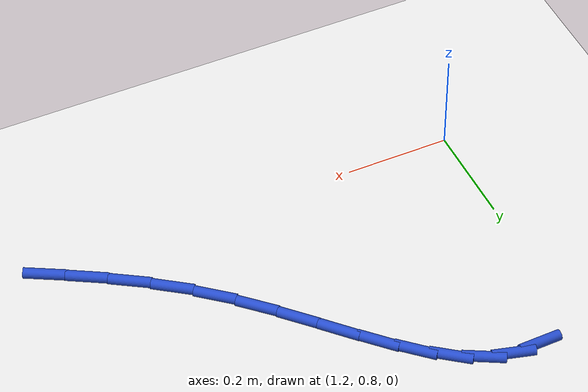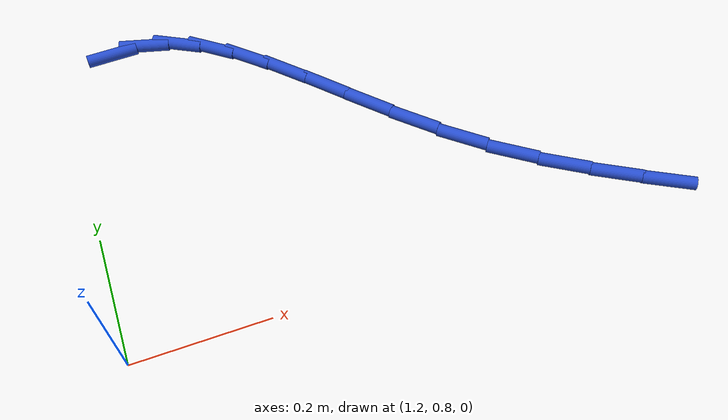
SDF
<sdf version="1.6">
 <world name="default">
  <model name="ground_plane">
   <static>1</static>
   <link name="link">
    <collision name="collision">
     <geometry><plane><normal>0 0 1</normal><size>100 100</size></plane></geometry>
     <surface><friction><ode><mu>100</mu><mu2>50</mu2></ode></friction></surface>
    </collision>
    <visual name="visual">
     <cast_shadows>0</cast_shadows>
     <geometry><plane><normal>0 0 1</normal><size>100 100</size></plane></geometry>
     <material>
      <script><uri>file://media/materials/scripts/gazebo.material</uri><name>Gazebo/WhiteGlow</name></script>
     </material>
    </visual>
   </link>
  </model>
  <model name="line">
   <link name="link_28">
    <pose>1.2842268844533817 1.3294396274183677 0.01 0 1.57 0.026233133414479266</pose>
    <collision name="collision">
     <geometry><cylinder><radius>0.01</radius><length>0.08</length></cylinder></geometry>
    </collision>
    <visual name="visual">
     <material>
      <script><name>Gazebo/Blue</name><uri>file://media/materials/scripts/gazebo.material</uri></script>
     </material>
     <geometry><cylinder><radius>0.01</radius><length>0.08</length></cylinder></geometry>
    </visual>
   </link>
   <link name="link_29">
    <pose>1.3374109428165473 1.3308351320498175 0.01 0 1.57 -0.26421898048747416</pose>
    <collision name="collision">
     <geometry><cylinder><radius>0.01</radius><length>0.08</length></cylinder></geometry>
    </collision>
    <visual name="visual">
     <material>
      <script><name>Gazebo/Blue</name><uri>file://media/materials/scripts/gazebo.material</uri></script>
     </material>
     <geometry><cylinder><radius>0.01</radius><length>0.08</length></cylinder></geometry>
    </visual>
   </link>
   <link name="link_30">
    <pose>1.3890662161725098 1.3168600978813159 0.01 0 1.57 -0.49499924297472075</pose>
    <collision name="collision">
     <geometry><cylinder><radius>0.01</radius><length>0.08</length></cylinder></geometry>
    </collision>
    <visual name="visual">
     <material>
      <script><name>Gazebo/Blue</name><uri>file://media/materials/scripts/gazebo.material</uri></script>
     </material>
     <geometry><cylinder><radius>0.01</radius><length>0.08</length></cylinder></geometry>
    </visual>
   </link>
   <link name="link_31">
    <pose>1.4397349089126372 1.2895077739617706 0.01 0 1.57 -0.6499546105657471</pose>
    <collision name="collision">
     <geometry><cylinder><radius>0.01</radius><length>0.08</length></cylinder></geometry>
    </collision>
    <visual name="visual">
     <material>
      <script><name>Gazebo/Blue</name><uri>file://media/materials/scripts/gazebo.material</uri></script>
     </material>
     <geometry><cylinder><radius>0.01</radius><length>0.08</length></cylinder></geometry>
    </visual>
   </link>
   <link name="link_32">
    <pose>1.4900354653899797 1.251272672074284 0.01 0 1.57 -0.7450030925023672</pose>
    <collision name="collision">
     <geometry><cylinder><radius>0.01</radius><length>0.08</length></cylinder></geometry>
    </collision>
    <visual name="visual">
     <material>
      <script><name>Gazebo/Blue</name><uri>file://media/materials/scripts/gazebo.material</uri></script>
     </material>
     <geometry><cylinder><radius>0.01</radius><length>0.08</length></cylinder></geometry>
    </visual>
   </link>
   <link name="link_33">
    <pose>1.5405863299575853 1.2046493040019575 0.01 0 1.57 -0.7959571310989708</pose>
    <collision name="collision">
     <geometry><cylinder><radius>0.01</radius><length>0.08</length></cylinder></geometry>
    </collision>
    <visual name="visual">
     <material>
      <script><name>Gazebo/Blue</name><uri>file://media/materials/scripts/gazebo.material</uri></script>
     </material>
     <geometry><cylinder><radius>0.01</radius><length>0.08</length></cylinder></geometry>
    </visual>
   </link>
   <link name="link_34">
    <pose>1.5920059469685035 1.152132181527893 0.01 0 1.57 -0.8130465413457344</pose>
    <collision name="collision">
     <geometry><cylinder><radius>0.01</radius><length>0.08</length></cylinder></geometry>
    </collision>
    <visual name="visual">
     <material>
      <script><name>Gazebo/Blue</name><uri>file://media/materials/scripts/gazebo.material</uri></script>
     </material>
     <geometry><cylinder><radius>0.01</radius><length>0.08</length></cylinder></geometry>
    </visual>
   </link>
   <link name="link_35">
    <pose>1.6449127607757839 1.096215816435193 0.01 0 1.57 -0.8015693686978921</pose>
    <collision name="collision">
     <geometry><cylinder><radius>0.01</radius><length>0.08</length></cylinder></geometry>
    </collision>
    <visual name="visual">
     <material>
      <script><name>Gazebo/Blue</name><uri>file://media/materials/scripts/gazebo.material</uri></script>
     </material>
     <geometry><cylinder><radius>0.01</radius><length>0.08</length></cylinder></geometry>
    </visual>
   </link>
   <link name="link_36">
    <pose>1.6999252157324753 1.0393947205069591 0.01 0 1.57 -0.7632253523414928</pose>
    <collision name="collision">
     <geometry><cylinder><radius>0.01</radius><length>0.08</length></cylinder></geometry>
    </collision>
    <visual name="visual">
     <material>
      <script><name>Gazebo/Blue</name><uri>file://media/materials/scripts/gazebo.material</uri></script>
     </material>
     <geometry><cylinder><radius>0.01</radius><length>0.08</length></cylinder></geometry>
    </visual>
   </link>
   <link name="link_37">
    <pose>1.757661756191627 0.984163405526293 0.01 0 1.57 -0.6975120208774684</pose>
    <collision name="collision">
     <geometry><cylinder><radius>0.01</radius><length>0.08</length></cylinder></geometry>
    </collision>
    <visual name="visual">
     <material>
      <script><name>Gazebo/Blue</name><uri>file://media/materials/scripts/gazebo.material</uri></script>
     </material>
     <geometry><cylinder><radius>0.01</radius><length>0.08</length></cylinder></geometry>
    </visual>
   </link>
   <link name="link_38">
    <pose>1.8187254816299359 0.9329893051657974 0.01 0 1.57 -0.621643557203612</pose>
    <collision name="collision">
     <geometry><cylinder><radius>0.01</radius><length>0.08</length></cylinder></geometry>
    </collision>
    <visual name="visual">
     <material>
      <script><name>Gazebo/Blue</name><uri>file://media/materials/scripts/gazebo.material</uri></script>
     </material>
     <geometry><cylinder><radius>0.01</radius><length>0.08</length></cylinder></geometry>
    </visual>
   </link>
   <link name="link_39">
    <pose>1.8829489194788112 0.8869800744650802 0.01 0 1.57 -0.5628517008662948</pose>
    <collision name="collision">
     <geometry><cylinder><radius>0.01</radius><length>0.08</length></cylinder></geometry>
    </collision>
    <visual name="visual">
     <material>
      <script><name>Gazebo/Blue</name><uri>file://media/materials/scripts/gazebo.material</uri></script>
     </material>
     <geometry><cylinder><radius>0.01</radius><length>0.08</length></cylinder></geometry>
    </visual>
   </link>
   <link name="link_40">
    <pose>1.9490493559673479 0.8452753744691358 0.01 0 1.57 -0.5231327259988328</pose>
    <collision name="collision">
     <geometry><cylinder><radius>0.01</radius><length>0.08</length></cylinder></geometry>
    </collision>
    <visual name="visual">
     <material>
      <script><name>Gazebo/Blue</name><uri>file://media/materials/scripts/gazebo.material</uri></script>
     </material>
     <geometry><cylinder><radius>0.01</radius><length>0.08</length></cylinder></geometry>
    </visual>
   </link>
   <link name="link_41">
    <pose>2.015656831541926 0.8068609092349266 0.01 0 1.57 -0.5025981897825137</pose>
    <collision name="collision">
     <geometry><cylinder><radius>0.01</radius><length>0.08</length></cylinder></geometry>
    </collision>
    <visual name="visual">
     <material>
      <script><name>Gazebo/Blue</name><uri>file://media/materials/scripts/gazebo.material</uri></script>
     </material>
     <geometry><cylinder><radius>0.01</radius><length>0.08</length></cylinder></geometry>
    </visual>
   </link>
  </model>
 </world>
</sdf>
